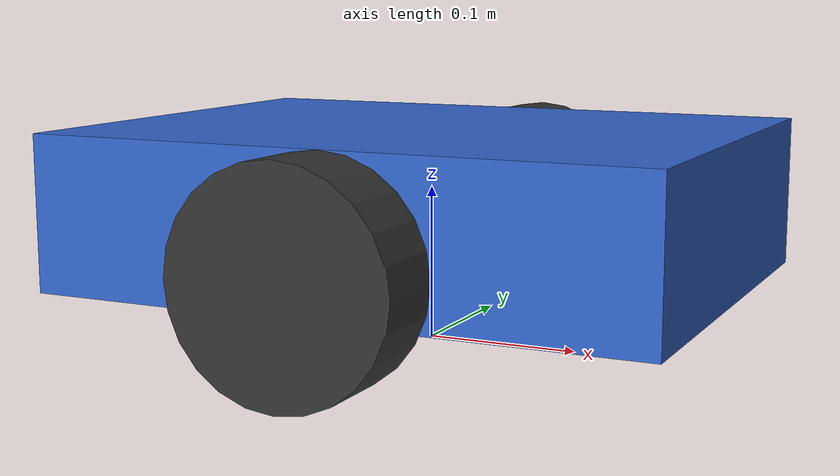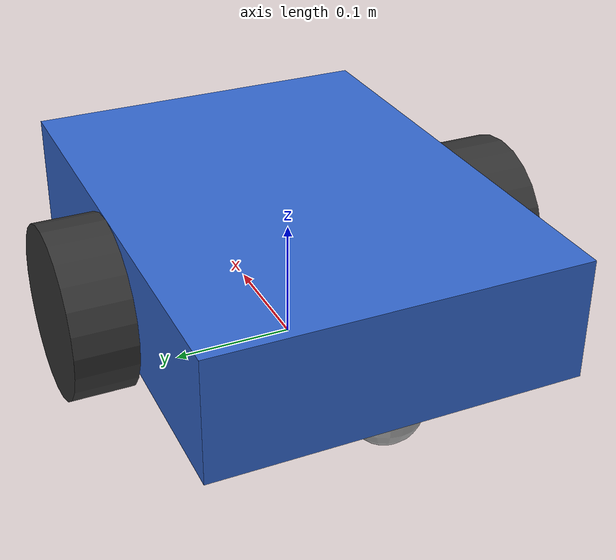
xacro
<?xml version="1.0"?>
<robot xmlns:xacro="http://www.ros.org/wiki/xacro" name="diff_robot">

  <!-- ═══════════════════════════════════════════
       PROPERTIES
  ═══════════════════════════════════════════ -->
  <xacro:property name="base_length"    value="0.4"/>
  <xacro:property name="base_width"     value="0.3"/>
  <xacro:property name="base_height"    value="0.1"/>
  <xacro:property name="base_mass"      value="2.0"/>

  <xacro:property name="wheel_radius"   value="0.07"/>
  <xacro:property name="wheel_width"    value="0.05"/>
  <xacro:property name="wheel_mass"     value="0.3"/>
  <xacro:property name="wheel_offset_y" value="0.175"/>
  <xacro:property name="wheel_offset_z" value="-0.02"/>

  <xacro:property name="caster_radius"  value="0.03"/>
  <xacro:property name="caster_mass"    value="0.1"/>

  <!-- ═══════════════════════════════════════════
       INERTIA MACROS
  ═══════════════════════════════════════════ -->
  <xacro:macro name="box_inertia" params="m l w h">
    <inertial>
      <mass value="${m}"/>
      <inertia
        ixx="${m*(w*w+h*h)/12}" ixy="0" ixz="0"
        iyy="${m*(l*l+h*h)/12}" iyz="0"
        izz="${m*(l*l+w*w)/12}"/>
    </inertial>
  </xacro:macro>

  <xacro:macro name="cylinder_inertia" params="m r h">
    <inertial>
      <mass value="${m}"/>
      <inertia
        ixx="${m*(3*r*r+h*h)/12}" ixy="0" ixz="0"
        iyy="${m*(3*r*r+h*h)/12}" iyz="0"
        izz="${m*r*r/2}"/>
    </inertial>
  </xacro:macro>

  <xacro:macro name="sphere_inertia" params="m r">
    <inertial>
      <mass value="${m}"/>
      <inertia
        ixx="${2*m*r*r/5}" ixy="0" ixz="0"
        iyy="${2*m*r*r/5}" iyz="0"
        izz="${2*m*r*r/5}"/>
    </inertial>
  </xacro:macro>

  <!-- ═══════════════════════════════════════════
       MATERIALS
  ═══════════════════════════════════════════ -->
  <material name="blue">
    <color rgba="0.2 0.4 0.8 1.0"/>
  </material>
  <material name="dark_grey">
    <color rgba="0.2 0.2 0.2 1.0"/>
  </material>
  <material name="light_grey">
    <color rgba="0.7 0.7 0.7 1.0"/>
  </material>

  <!-- ═══════════════════════════════════════════
       BASE LINK
  ═══════════════════════════════════════════ -->
  <link name="base_footprint"/>

  <joint name="base_footprint_joint" type="fixed">
    <parent link="base_footprint"/>
    <child  link="base_link"/>
    <origin xyz="0 0 ${wheel_radius - wheel_offset_z}" rpy="0 0 0"/>
  </joint>

  <link name="base_link">
    <visual>
      <geometry>
        <box size="${base_length} ${base_width} ${base_height}"/>
      </geometry>
      <material name="blue"/>
    </visual>
    <collision>
      <geometry>
        <box size="${base_length} ${base_width} ${base_height}"/>
      </geometry>
    </collision>
    <xacro:box_inertia m="${base_mass}" l="${base_length}"
                       w="${base_width}" h="${base_height}"/>
  </link>

  <!-- ═══════════════════════════════════════════
       WHEEL MACRO
  ═══════════════════════════════════════════ -->
  <xacro:macro name="wheel" params="name y_reflect">

    <link name="${name}_wheel">
      <visual>
        <origin xyz="0 0 0" rpy="${pi/2} 0 0"/>
        <geometry>
          <cylinder radius="${wheel_radius}" length="${wheel_width}"/>
        </geometry>
        <material name="dark_grey"/>
      </visual>
      <collision>
        <origin xyz="0 0 0" rpy="${pi/2} 0 0"/>
        <geometry>
          <cylinder radius="${wheel_radius}" length="${wheel_width}"/>
        </geometry>
      </collision>
      <xacro:cylinder_inertia m="${wheel_mass}"
                              r="${wheel_radius}"
                              h="${wheel_width}"/>
    </link>

    <joint name="${name}_wheel_joint" type="continuous">
      <parent link="base_link"/>
      <child  link="${name}_wheel"/>
      <origin xyz="0 ${y_reflect * wheel_offset_y} ${wheel_offset_z}"
              rpy="0 0 0"/>
      <axis xyz="0 1 0"/>
      <dynamics damping="0.01" friction="0.1"/>
    </joint>

  </xacro:macro>

  <xacro:wheel name="left"  y_reflect="1"/>
  <xacro:wheel name="right" y_reflect="-1"/>

  <!-- ═══════════════════════════════════════════
       CASTER WHEEL
  ═══════════════════════════════════════════ -->
  <link name="caster_wheel">
    <visual>
      <geometry>
        <sphere radius="${caster_radius}"/>
      </geometry>
      <material name="light_grey"/>
    </visual>
    <collision>
      <geometry>
        <sphere radius="${caster_radius}"/>
      </geometry>
    </collision>
    <xacro:sphere_inertia m="${caster_mass}" r="${caster_radius}"/>
  </link>

  <joint name="caster_wheel_joint" type="fixed">
    <parent link="base_link"/>
    <child  link="caster_wheel"/>
    <origin xyz="${-base_length/2 + caster_radius} 0 ${-base_height/2}"
            rpy="0 0 0"/>
  </joint>

  <!-- ═══════════════════════════════════════════
       GAZEBO HARMONIC — FRICTION & COLOURS
  ═══════════════════════════════════════════ -->
  <gazebo reference="base_link">
    <material>Gazebo/Blue</material>
  </gazebo>

  <gazebo reference="left_wheel">
    <material>Gazebo/DarkGrey</material>
    <mu1>1.0</mu1>
    <mu2>1.0</mu2>
  </gazebo>

  <gazebo reference="right_wheel">
    <material>Gazebo/DarkGrey</material>
    <mu1>1.0</mu1>
    <mu2>1.0</mu2>
  </gazebo>

  <gazebo reference="caster_wheel">
    <material>Gazebo/Grey</material>
    <mu1>0.01</mu1>
    <mu2>0.01</mu2>
  </gazebo>

  <gazebo>
    <plugin
      filename="gz-sim-diff-drive-system"
      name="gz::sim::systems::DiffDrive">

      <!-- Joints -->
      <left_joint>left_wheel_joint</left_joint>
      <right_joint>right_wheel_joint</right_joint>

      <!-- Physical parameters — must match URDF values -->
      <wheel_separation>${wheel_offset_y * 2}</wheel_separation>
      <wheel_radius>${wheel_radius}</wheel_radius>

      <!-- Limits -->
      <max_linear_acceleration>2.0</max_linear_acceleration>
      <max_angular_acceleration>2.0</max_angular_acceleration>
      <max_linear_velocity>1.0</max_linear_velocity>
      <max_angular_velocity>2.0</max_angular_velocity>

      <!-- Gazebo topic (bridge maps this to ROS /cmd_vel) -->
      <topic>cmd_vel</topic>
      <odom_topic>odom</odom_topic>
      <frame_id>odom</frame_id>
      <child_frame_id>base_footprint</child_frame_id>

      <!-- Publish odometry and TF -->
      <odom_publish_frequency>30</odom_publish_frequency>

    </plugin>

    <!-- Publishes /tf from Gazebo side -->
    <plugin
      filename="gz-sim-pose-publisher-system"
      name="gz::sim::systems::PosePublisher">
      <publish_link_pose>true</publish_link_pose>
      <publish_sensor_pose>false</publish_sensor_pose>
      <publish_collision_pose>false</publish_collision_pose>
      <publish_visual_pose>false</publish_visual_pose>
      <publish_nested_model_pose>false</publish_nested_model_pose>
      <update_frequency>30</update_frequency>
    </plugin>

  </gazebo>

</robot>
